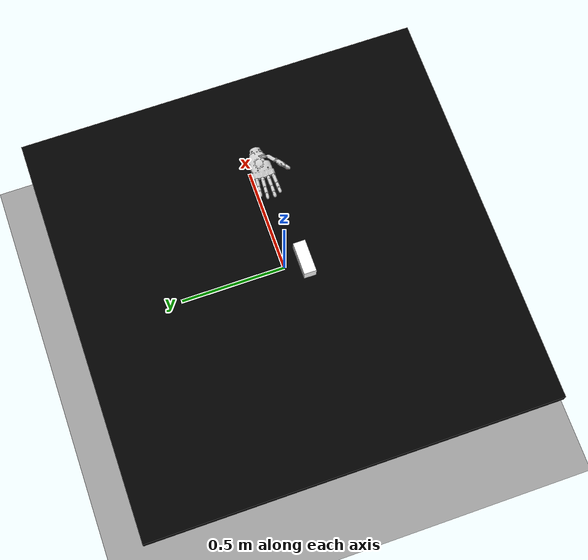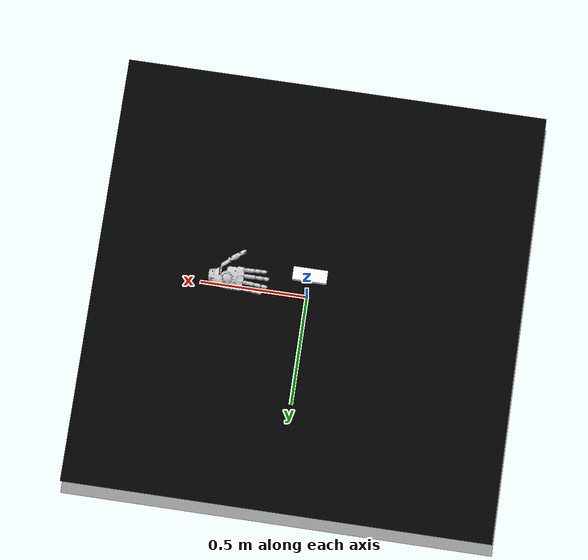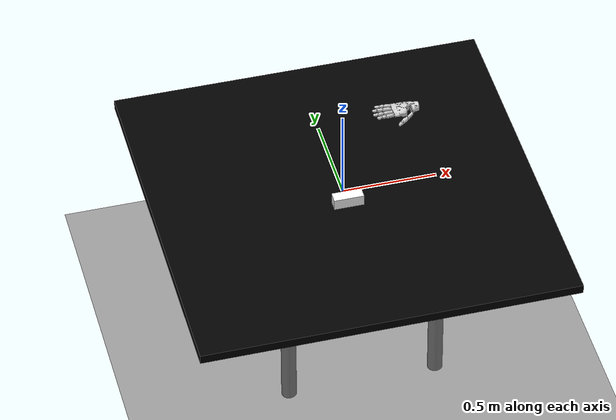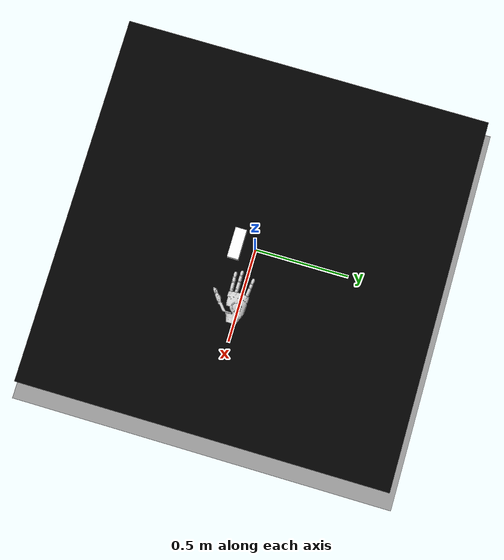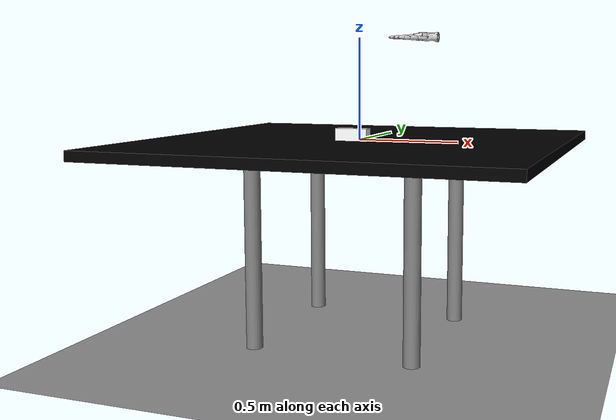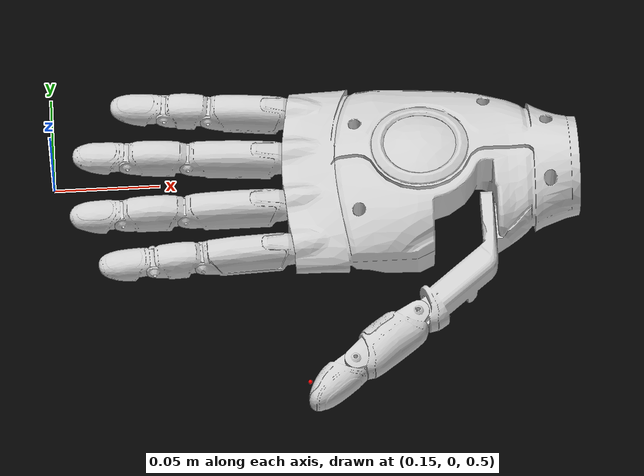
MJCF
<mujoco model="robot">
    <compiler convexhull="false" angle="radian" meshdir=".\stls" texturedir=".\textures" inertiagrouprange="2 6"/>
    <option timestep="0.0002" impratio="100" cone="elliptic"/>
    <visual>
        <quality shadowsize="0"/>
    </visual>
    <asset>
        <texture builtin="gradient" height="32" rgb1="0.88235 0.95686 0.95294" rgb2="0.43922 0.42353 0.38039" type="skybox" width="32" />
        <texture builtin="checker" height="512" name="robot0:texplane" rgb1="0.2 0.2 0.2" rgb2="1 1 1" type="2d" width="512" />
        <texture builtin="flat" height="127" mark="cross" markrgb="0 0 0" name="robot0:texgeom" random="0.01" rgb1="0 0 0" rgb2="1 1 1" type="cube" width="127" />
        <texture type="cube" name="marblecube" file="./marble.png" />
        <texture type="cube" name="wood" file="./wood.png" />
        <texture type="cube" name="foil" file="./silverRaw.png" />
        <texture name="metal"        type="cube"     file="./metal2.png"/>
        <texture name="ur5_tex"     type="2d"       builtin="flat" height="32" width="32" rgb1="0.45 0.45 0.45" />

        <material name="ur5_mat"        texture="ur5_tex"   shininess="0.9" specular="0.75" reflectance="0.3"/>
        <material name="robot0:MatGnd" reflectance="0.5" texrepeat="2 2" texture="robot0:texplane" texuniform="true" />
        <material name="robot0:MatColl" reflectance="0.5" rgba="0.4 0.5 0.6 1" shininess="0.3" specular="1" />
        <material name="robot0:MatViz" reflectance="0.5" rgba="0.93 0.93 0.93 1" shininess="0.1" specular="0.75" />
        <material name="robot0:object" texture="robot0:texgeom" texuniform="false" />
        <material name="tablecube" texture="marblecube" rgba="0.8 0.8 0.8 1" />
        <material name="MatWood" texture="wood" texrepeat="3 3" specular="0.4" shininess="0.1" />
        <material name="MatFoil" texture="foil" specular="1" shininess="0.3" rgba="0.9 0.9 0.9 1" />
        <material name="bench_mat"      texture="metal"   shininess="0.1" specular="0.5" reflectance="0.2"/>

        <mesh file="handbase.stl" name="robot0:palm" smoothnormal="true" />
        <mesh file="thumb1.stl" name="robot0:th3" smoothnormal="true" />
        <mesh file="thumb2.stl" name="robot0:th2" smoothnormal="true" />
        <mesh file="thumb3.stl" name="robot0:th1" smoothnormal="true" />
        <mesh file="index1.stl" name="robot0:ff3" smoothnormal="true" />
        <mesh file="index2.stl" name="robot0:ff2" smoothnormal="true" />
        <mesh file="index3.stl" name="robot0:ff1" smoothnormal="true" />
        <mesh file="middle1.stl" name="robot0:mf3" smoothnormal="true" />
        <mesh file="middle2.stl" name="robot0:mf2" smoothnormal="true" />
        <mesh file="middle3.stl" name="robot0:mf1" smoothnormal="true" />
        <mesh file="ring1.stl" name="robot0:rf3" smoothnormal="true" />
        <mesh file="ring2.stl" name="robot0:rf2" smoothnormal="true" />
        <mesh file="ring3.stl" name="robot0:rf1" smoothnormal="true" />
        <mesh file="little1.stl" name="robot0:lf3" smoothnormal="true" />
        <mesh file="little2.stl" name="robot0:lf2" smoothnormal="true" />
        <mesh file="little3.stl" name="robot0:lf1" smoothnormal="true" />
    </asset>

    <default>
        <default class="robot0:asset_class">
            <geom friction="1 0.005 0.001" condim="4" margin="0.001" contype="1" conaffinity="1"></geom>
            <joint limited="true" damping="0.05" stiffness="0.1"></joint>
            <general ctrllimited="true" ctrlrange="-3 3" forcelimited="true" forcerange="-0.5 0.5"></general>
            <site size="0.005" rgba="0.4 0.9 0.4 1"></site>
            <light castshadow="false"/>
        </default>
        <default class="robot0:D_Touch">
            <site type="box" size="0.01 0.005 0.013" pos="0.001 -0.001 0.018" rgba="0.8 0.8 0.8 0.15" group="4"></site>
        </default>
        <default class="robot0:DC_Hand">
            <geom material="robot0:MatColl" condim="4" margin="0.001" contype="1" conaffinity="0" group="4"></geom>
        </default>
        <default class="robot0:DC_obj">
            <geom condim="4" margin="0.001" contype="1" conaffinity="1" group="4"></geom>
        </default>
        <default class="robot0:D_Vizual">
            <geom material="robot0:MatViz" contype="0" conaffinity="0" group="0" type="mesh" rgba="0.8 0.8 0.8 1"></geom>
        </default>
        <default class="robot0:contact">
            <site type="sphere" size="0.001" rgba="1 0 0 1" group="1"></site>
        </default>
    </default>

    <worldbody>
        <geom name='ground' size="2 2 0.25" pos="0 0 -1" type="plane" contype="1" conaffinity="0" material="robot0:MatGnd" />
        <light directional='false' diffuse='.7 .7 .7' specular='0.03 0.03 0.03' pos='-1 -1.0 4.0' dir='1 1.0 -4'/>

        <body name="table">
            <geom name="table" size="1 1 0.025" pos="0 0 -0.025" type="box" rgba="0 0 0 1" solref="0.002 0.1" friction="1 0.1 0.001" condim="4"/>
            <geom size="0.04 0.5" pos="0.4 0.4 -0.501" quat="0 1 0 0" type="cylinder" contype="0" conaffinity="0" />
            <geom size="0.04 0.5" pos="-0.4 0.4 -0.501" quat="0 1 0 0" type="cylinder" contype="0" conaffinity="0" />
            <geom size="0.04 0.5" pos="0.4 -0.4 -0.501" quat="0 1 0 0" type="cylinder" contype="0" conaffinity="0" />
            <geom size="0.04 0.5" pos="-0.4 -0.4 -0.501" quat="0 1 0 0" type="cylinder" contype="0" conaffinity="0" />
        </body>
        <body name="robot0:hand mount" pos="0.4 -0.0 0.5" euler="3.14 -1.571 0">

            <joint armature="0" axis="1 0 0" damping="10" limited="false" name="robot0:root_x" pos="0 0 0" type="slide" />
            <joint armature="0" axis="0 1 0" damping="10" limited="false" name="robot0:root_y" pos="0 0 0" type="slide" />
            <joint armature="0" axis="0 0 1" damping="10" limited="false" name="robot0:root_z" pos="0 0 0" type="slide" />
            <joint armature="0" axis="-1 0 0" damping="10" limited="false" name="robot0:root_rotationx" pos="0 0 0" type="hinge" />
            <joint armature="0" axis="0 0 -1" damping="10" limited="false" name="robot0:root_rotationy" pos="0 0 0" type="hinge" />
            <joint armature="0" axis="0 1 0" damping="10" limited="false" name="robot0:root_rotationz" pos="0 0 0" type="hinge" />
            <camera euler=" 0 -1.791 3.14" fovy="60"  name="realsense" pos="0.01 0 0.1" />
            <site name="grasp" euler=" 0 -1.571 0"  pos="0.01 0 0.1" />

            <body childclass="robot0:asset_class" name="robot0:palm" pos="0 0 -0">
                <geom class="robot0:DC_Hand" name="robot0:C_palm0" type="box" size="0.01 0.047 0.06" pos="0 0 0.075" ></geom>
                <geom class="robot0:D_Vizual" name="robot0:V_palm" mesh="robot0:palm" pos="0 0 0"></geom>
                <body name="robot0:ffknuckle" pos="-0.00135 0.03919 0.13556" euler = "-0.0395 0 0">
                    <body name="robot0:ffproximal" pos="0 0 0">
                        <joint name="robot0:FFJ2" type="hinge" pos="0 0 0" axis="0 1 0" solreflimit="0.002 0.1" range="0 1.571"></joint>
                        <geom class="robot0:D_Vizual" name="robot0:V_ffproximal" mesh="robot0:ff3"></geom>
                        <geom class="robot0:DC_Hand" name="robot0:C_ffproximal" type="capsule" pos="0 0 0.02" size="0.0075 0.02"></geom>
                        <body name="robot0:ffmiddle" pos="0 0 0.046">
                            <joint name="robot0:FFJ1" type="hinge" pos="0 0 0" axis="0 1 0" range="0 1.571" ></joint>
                            <geom class="robot0:D_Vizual" name="robot0:V_ffmiddle" mesh="robot0:ff2"></geom>
                            <geom class="robot0:DC_Hand" name="robot0:C_ffmiddle" type="capsule" pos="0 0 0.009" size="0.007 0.008"></geom>
                            <body name="robot0:ffdistal" pos="0 0 0.023">
                                <joint name="robot0:FFJ0" type="hinge" pos="0 0 0" axis="0 1 0" range="0 1.571" ></joint>
                                <geom class="robot0:D_Vizual" name="robot0:V_ffdistal" pos="0 0 0.001" mesh="robot0:ff1"></geom>
                                <geom class="robot0:DC_Hand" name="robot0:C_ffdistal" condim="4" type="capsule" pos="0 0 0.01" size="0.0055 0.01"></geom>
                                <site class="robot0:D_Touch" name="robot0:Tch_fftip"></site>
                                <site class="robot0:contact" name="robot0:ff_contact" pos=" 0.0055 0 0.02"></site>
                            </body>
                        </body>
                    </body>
                </body>
                <body name="robot0:mfknuckle" pos="-0.00128 0.01520 0.13822">
                    <body name="robot0:mfproximal" pos="0 0 0">
                        <joint name="robot0:MFJ2" type="hinge" pos="0 0 0" axis="0 1 0" solreflimit="0.002 0.1" range="0 1.571" ></joint>
                        <geom class="robot0:D_Vizual" name="robot0:V_mfproximal" mesh="robot0:mf3"></geom>
                        <geom class="robot0:DC_Hand" name="robot0:C_mfproximal" type="capsule" pos="0 0 0.023" size="0.0075 0.023"></geom>
                        <body name="robot0:mfmiddle" pos="0 0 0.050">
                            <joint name="robot0:MFJ1" type="hinge" pos="0 0 0" axis="0 1 0" range="0 1.571" ></joint>
                            <geom class="robot0:D_Vizual" name="robot0:V_mfmiddle" mesh="robot0:mf2"></geom>
                            <geom class="robot0:DC_Hand" name="robot0:C_mfmiddle" type="capsule" pos="0 0 0.013" size="0.007 0.0105"></geom>
                            <body name="robot0:mfdistal" pos="0 0 0.030">
                                <joint name="robot0:MFJ0" type="hinge" pos="0 0 0" axis="0 1 0" range="0 1.571" ></joint>
                                <geom class="robot0:D_Vizual" name="robot0:V_mfdistal" mesh="robot0:mf1"></geom>
                                <geom class="robot0:DC_Hand" name="robot0:C_mfdistal" type="capsule" pos="0 0 0.009" size="0.0055 0.009"></geom>
                                <site class="robot0:D_Touch" name="robot0:Tch_mftip"></site>
                                <site class="robot0:contact" name="robot0:mf_contact" pos=" 0.0055 0 0.018"></site>
                            </body>
                        </body>
                    </body>
                </body>
                <body name="robot0:rfknuckle" pos="-0.00121 -0.01057 0.13759" euler="0.0726 0 0">
                    <body name="robot0:rfproximal" pos="0 0 0">
                        <joint name="robot0:RFJ2" type="hinge" pos="0 0 0" axis="0 1 0" solreflimit="0.002 0.1" range="0 1.571" ></joint>
                        <geom class="robot0:D_Vizual" name="robot0:V_rfproximal" mesh="robot0:rf3"></geom>
                        <geom class="robot0:DC_Hand" name="robot0:C_rfproximal" type="capsule" pos="0 0 0.022" size="0.0075 0.022"></geom>
                        <body name="robot0:rfmiddle" pos="0 0 0.048">
                            <joint name="robot0:RFJ1" type="hinge" pos="0 0 0" axis="0 1 0" range="0 1.571" ></joint>
                            <geom class="robot0:D_Vizual" name="robot0:V_rfmiddle" mesh="robot0:rf2"></geom>
                            <geom class="robot0:DC_Hand" name="robot0:C_rfmiddle" type="capsule" pos="0 0 0.0125" size="0.007 0.0105"></geom>
                            <body name="robot0:rfdistal" pos="0 0 0.029">
                                <joint name="robot0:RFJ0" type="hinge" pos="0 0 0" axis="0 1 0" range="0 1.571" ></joint>
                                <geom class="robot0:D_Vizual" name="robot0:V_rfdistal" mesh="robot0:rf1" pos="0 0 0.001"></geom>
                                <geom class="robot0:DC_Hand" name="robot0:C_rfdistal" type="capsule" pos="0 0 0.01" size="0.0055 0.01"></geom>
                                <site class="robot0:D_Touch" name="robot0:Tch_rftip"></site>
                                <site class="robot0:contact" name="robot0:rf_contact" pos=" 0.0055 0 0.02"></site>
                            </body>
                        </body>
                    </body>
                </body>
                <body name="robot0:lfknuckle" euler="0.108 0 0.0" pos="-0.00114 -0.03517 0.13459">
                    <body name="robot0:lfproximal" pos="0 0 0">
                        <joint name="robot0:LFJ2" type="hinge" pos="0 0 0" axis="0 1 0" solreflimit="0.002 0.1" range="0 1.571"></joint>
                        <geom class="robot0:D_Vizual" name="robot0:V_lfproximal" mesh="robot0:lf3"></geom>
                        <geom class="robot0:DC_Hand" name="robot0:C_lfproximal" type="capsule" pos="0 0 0.017" size="0.0075 0.016"></geom>
                        <body name="robot0:lfmiddle" pos="0 0 0.040">
                            <joint name="robot0:LFJ1" type="hinge" pos="0 0 0" axis="0 1 0" range="0 1.571" ></joint>
                            <geom class="robot0:D_Vizual" name="robot0:V_lfmiddle" mesh="robot0:lf2"></geom>
                            <geom class="robot0:DC_Hand" name="robot0:C_lfmiddle" type="capsule" pos="0 0 0.009" size="0.007 0.009"></geom>
                            <body name="robot0:lfdistal" pos="0 0 0.021">
                                <joint name="robot0:LFJ0" type="hinge" pos="0 0 0" axis="0 1 0" range="0 1.571"></joint>
                                <geom class="robot0:D_Vizual" name="robot0:V_lfdistal" mesh="robot0:lf1" pos="0 0 0.001"></geom>
                                <geom class="robot0:DC_Hand" name="robot0:C_lfdistal" type="capsule" pos="0 0 0.01" size="0.0055 0.01"></geom>
                                <site class="robot0:D_Touch" name="robot0:Tch_lftip"></site>
                                <site class="robot0:contact" name="robot0:lf_contact" pos=" 0.0055 0 0.02"></site>
                            </body>
                        </body>
                    </body>
                </body>
                <body name="robot0:thbase" pos="0.005 0.02 0.044" >
                    <body name="robot0:thproximal" pos="0 0 0">
                        <joint name="robot0:THJ3" type="hinge" pos="0 0 0" axis="0 0 -1" range="0 2" ></joint>
                        <geom class="robot0:D_Vizual" name="robot0:V_thproximal" mesh="robot0:th3" euler="0 0 0"></geom>
                        <geom class="robot0:DC_Hand" name="robot0:C_thproximal" type="capsule" pos="0 0.04 0.018" size="0.0075 0.012" euler="-0.703 0 0"></geom>
                        <geom class="robot0:DC_Hand" name="robot0:C_thproximal0" type="box" pos="0 0.015 0.00" size="0.0085 0.0065 0.01" euler="1.57 0 0"></geom>
                        <body name="robot:th_site0" pos="0 0.0504 0.03697" axisangle="1 0 0 -0.523">
                        </body>
                        <body name="robot0:thhub" pos="0 0.056 0.03697" axisangle="1 0 0 -0.65">
                            <joint name="robot0:THJ2" type="hinge" pos="0 0 0" axis="1 0 0" solreflimit="0.002 0.1" range="0 1.209" ></joint>
                            <geom class="robot0:D_Vizual" name="robot0:V_thmiddle" mesh="robot0:th2" euler="0 0 -1.571"></geom>
                            <geom class="robot0:DC_Hand" name="robot0:C_thmiddle" type="capsule" pos="0 0.0 0.0135" size="0.0075 0.0165" euler="0 0 0"></geom>
                            <body name="robot0:thmiddle" pos="0 0 0.039">
                                <joint name="robot0:THJ1" type="hinge" pos="0 0 0" axis="1 0 0" range="0 1.524" ></joint>
                                <geom class="robot0:D_Vizual" name="robot0:V_thdistal" mesh="robot0:th1" euler="0 0 -1.571"></geom>
                                <geom class="robot0:DC_Hand" name="robot0:C_thdistal" type="capsule" pos="0 0 0.011" size="0.007 0.011"></geom>
                                <site class="robot0:D_Touch" name="robot0:Tch_thtip" size="0.009 0.005 0.016" pos="0.00 0 0.015"></site>
                                <site class="robot0:contact" name="robot0:th_contact" pos=" 0.00 -0.007 0.022"></site>
                            </body>
                        </body>
                    </body>
                </body>
            </body>
        </body>

        <body name="obj" pos = " -0.00 -0.1 0.0" >
            <geom class="robot0:DC_obj" name="obj" type="box" size="0.03 0.03 0.08" pos="0 0 0.031" euler="1.571 1.571 0" rgba="1 1 1 1" solref="0.01 0.5" group ="2"/>
            <joint type="free" damping="10"/>
        </body>

    </worldbody>
    <tendon>
		<fixed name="robot0:T_FFJ2c" limited="true" range="-0.0001 0.0001" solreflimit="0.002 0.1">
            <joint joint="robot0:FFJ2" coef="0.003996"></joint>
            <joint joint="robot0:FFJ0" coef="-0.005806"></joint>
        </fixed>
        <fixed name="robot0:T_FFJ1c" limited="true" range="-0.0001 0.0001" solreflimit="0.002 0.1">
            <joint joint="robot0:FFJ2" coef="0.007094"></joint>
            <joint joint="robot0:FFJ1" coef="-0.005806"></joint>
        </fixed>

        <fixed name="robot0:T_MFJ2c" limited="true" range="-0.0001 0.0001" solreflimit="0.002 0.1">
            <joint joint="robot0:MFJ2" coef="0.003996"></joint>
            <joint joint="robot0:MFJ0" coef="-0.005806"></joint>
        </fixed>
        <fixed name="robot0:T_MFJ1c" limited="true" range="-0.0001 0.0001" solreflimit="0.002 0.1">
            <joint joint="robot0:MFJ2" coef="0.007094"></joint>
            <joint joint="robot0:MFJ1" coef="-0.005806"></joint>
        </fixed>

        <fixed name="robot0:T_RFJ2c" limited="true" range="-0.0001 0.0001" solreflimit="0.002 0.1">
            <joint joint="robot0:RFJ2" coef="0.003996"></joint>
            <joint joint="robot0:RFJ0" coef="-0.005806"></joint>
        </fixed>
        <fixed name="robot0:T_RFJ1c" limited="true" range="-0.0001 0.0001" solreflimit="0.002 0.1">
            <joint joint="robot0:RFJ2" coef="0.007094"></joint>
            <joint joint="robot0:RFJ1" coef="-0.005806"></joint>
        </fixed>

        <fixed name="robot0:T_LFJ2c" limited="true" range="-0.0001 0.0001" solreflimit="0.002 0.1">
            <joint joint="robot0:LFJ2" coef="0.003996"></joint>
            <joint joint="robot0:LFJ0" coef="-0.005806"></joint>
        </fixed>
        <fixed name="robot0:T_LFJ1c" limited="true" range="-0.0001 0.0001" solreflimit="0.002 0.1">
            <joint joint="robot0:LFJ2" coef="0.007094"></joint>
            <joint joint="robot0:LFJ1" coef="-0.005806"></joint>
        </fixed>

        <fixed name="robot0:T_THJ2c" limited="true" range="-0.0001 0.0001"  solreflimit="0.002 0.1">
            <joint joint="robot0:THJ1" coef="0.006921"></joint>
            <joint joint="robot0:THJ2" coef="-0.007218"></joint>
        </fixed>
    </tendon>

    <actuator>
        <motor name="robot0:root_x" class="robot0:asset_class" joint="robot0:root_x"  ctrlrange="-100 100" forcerange="-100 100"></motor>
        <motor name="robot0:root_y" class="robot0:asset_class" joint="robot0:root_y" ctrlrange="-100 100" forcerange="-100 100"></motor>
        <motor name="robot0:root_z" class="robot0:asset_class" joint="robot0:root_z" ctrlrange="-100 100" forcerange="-100 100"></motor>
        <motor name="robot0:root_rotationx" class="robot0:asset_class" joint="robot0:root_rotationx" ctrlrange="-100 100" forcerange="-100 100"></motor>
        <motor name="robot0:root_rotationy" class="robot0:asset_class" joint="robot0:root_rotationy" ctrlrange="-100 100" forcerange="-100 100"></motor>
        <motor name="robot0:root_rotationz" class="robot0:asset_class" joint="robot0:root_rotationz" ctrlrange="-100 100" forcerange="-100 100"></motor>
        <motor name="robot0:A_FFJ2" class="robot0:asset_class" joint="robot0:FFJ2" ></motor>
        <motor name="robot0:A_MFJ2" class="robot0:asset_class" joint="robot0:MFJ2" ></motor>
        <motor name="robot0:A_RFJ2" class="robot0:asset_class" joint="robot0:RFJ2"  ></motor>
        <motor name="robot0:A_LFJ2" class="robot0:asset_class" joint="robot0:LFJ2" ></motor>
		<motor name="robot0:A_THJ2" class="robot0:asset_class" joint="robot0:THJ2"  ctrlrange="-0.3 0.3"></motor>
		<motor name="robot0:A_THJ3" class="robot0:asset_class" joint="robot0:THJ3"  ctrlrange="-1 1"></motor>
    </actuator>

    <sensor>
        <actuatorfrc actuator="robot0:A_FFJ2" name="Sa_FFJ2" />
        <actuatorfrc actuator="robot0:A_MFJ2" name="Sa_MFJ2" />
        <actuatorfrc actuator="robot0:A_RFJ2" name="Sa_RFJ2" />
        <actuatorfrc actuator="robot0:A_LFJ2" name="Sa_LFJ2" />
        <actuatorfrc actuator="robot0:A_THJ3" name="Sa_THJ3" />
        <actuatorfrc actuator="robot0:A_THJ2" name="Sa_THJ2" />

        <touch name="ST_Tch_fftip"  site="robot0:Tch_fftip"/>
        <touch name="ST_Tch_mftip"  site="robot0:Tch_mftip"/>
        <touch name="ST_Tch_rftip"  site="robot0:Tch_rftip"/>
        <touch name="ST_Tch_lftip"  site="robot0:Tch_lftip"/>
        <touch name="ST_Tch_thtip"  site="robot0:Tch_thtip"/>
    </sensor>

</mujoco>
